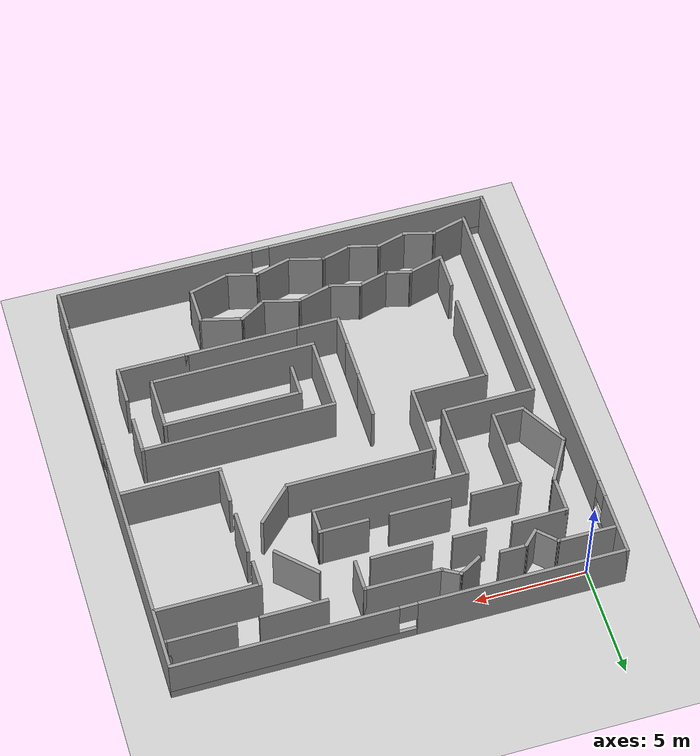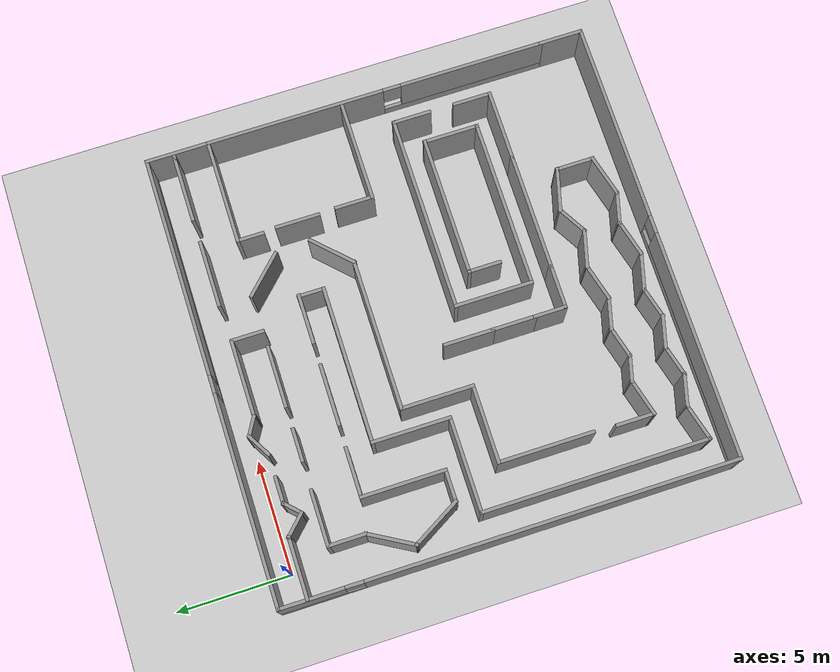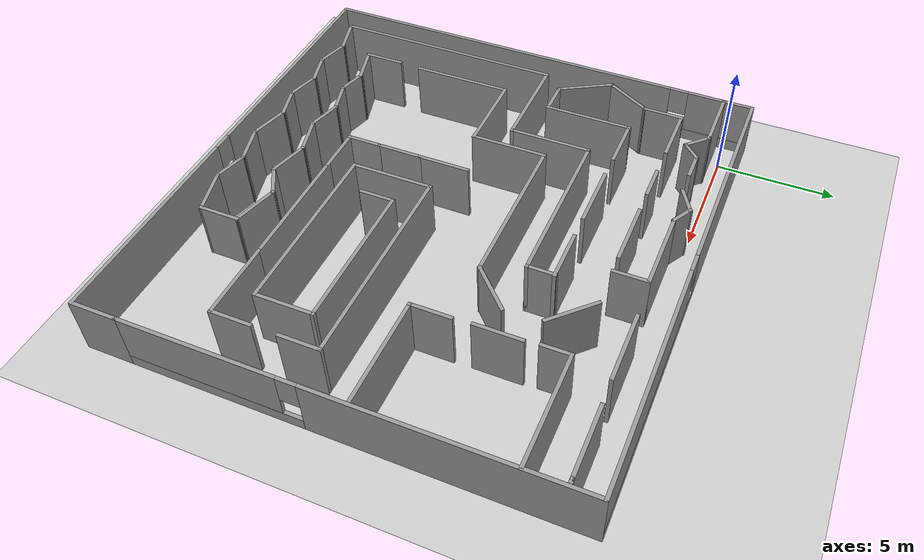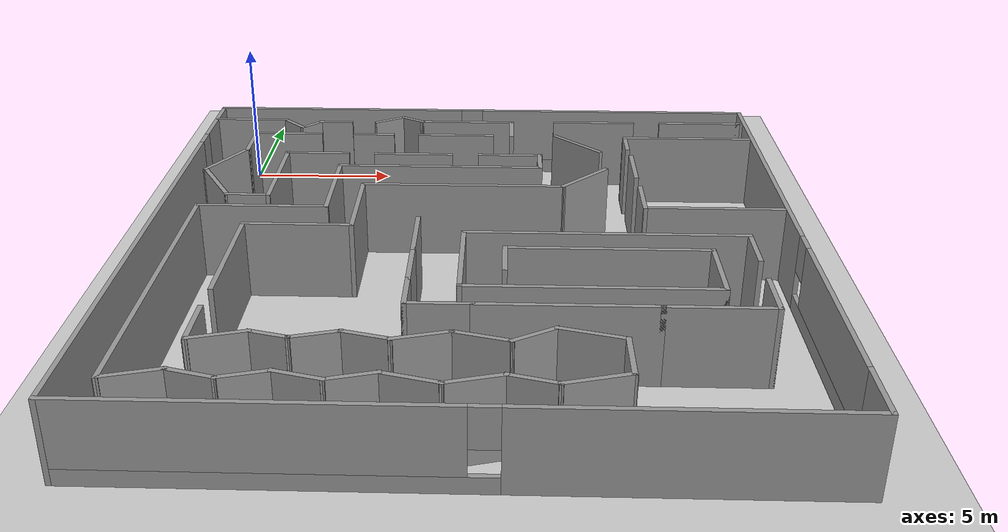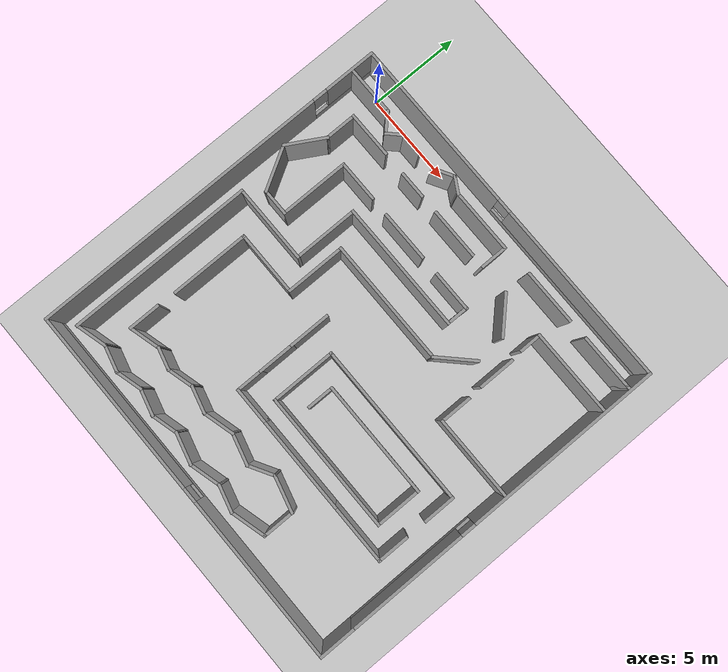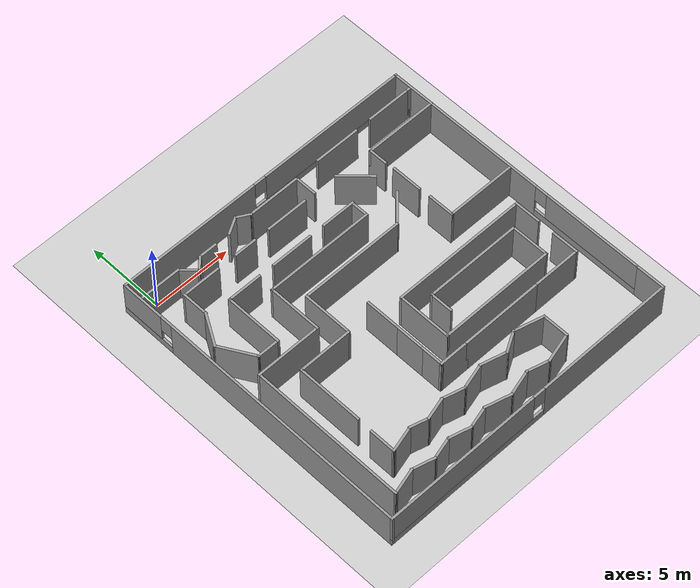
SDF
<sdf version="1.6">
 <world name="default">
  <light name="sun" type="directional">
   <pose>0 0 10 0 -0 0</pose>
   <diffuse>0.8 0.8 0.8 1</diffuse>
   <specular>0.1 0.1 0.1 1</specular>
   <attenuation>
    <range>1000</range>
    <constant>0.9</constant>
    <linear>0.01</linear>
    <quadratic>0.001</quadratic>
   </attenuation>
   <direction>-0.5 0.5 -1</direction>
  </light>
  <model name="ground_plane">
   <static>1</static>
   <link name="link">
    <collision name="collision">
     <geometry><plane><normal>0 0 1</normal><size>100 100</size></plane></geometry>
     <surface><friction><ode><mu>100</mu><mu2>50</mu2></ode></friction></surface>
    </collision>
    <visual name="visual">
     <cast_shadows>0</cast_shadows>
     <geometry><plane><normal>0 0 1</normal><size>100 100</size></plane></geometry>
     <material>
      <script><uri>file://media/materials/scripts/gazebo.material</uri><name>Gazebo/Grey</name></script>
     </material>
    </visual>
   </link>
  </model>
  <gravity>0 0 -9.8</gravity>
  <magnetic_field>6e-06 2.3e-05 -4.2e-05</magnetic_field>
  <atmosphere type="adiabatic"/>
  <physics name="default_physics" default="0" type="ode">
   <max_step_size>0.001</max_step_size>
   <real_time_factor>1</real_time_factor>
   <real_time_update_rate>1000</real_time_update_rate>
  </physics>
  <scene><ambient>0.4 0.4 0.4 1</ambient><background>0.7 0.7 0.7 1</background><shadows>1</shadows></scene>
  <spherical_coordinates>
   <surface_model>EARTH_WGS84</surface_model>
   <latitude_deg>0</latitude_deg>
   <longitude_deg>0</longitude_deg>
   <elevation>0</elevation>
   <heading_deg>0</heading_deg>
  </spherical_coordinates>
  <model name="Hard">
   <pose>8.56089 -9.07825 0 0 -0 0</pose>
   <link name="Wall_1">
    <pose>0 9.85 0 0 -0 0</pose>
    <visual name="Wall_1_Visual_0">
     <pose>-5.35205 0 1.25 0 -0 0</pose>
     <geometry><box><size>9.29589 0.15 2.5</size></box></geometry>
     <material>
      <script><uri>file://media/materials/scripts/gazebo.material</uri><name>Gazebo/Grey</name></script>
      <ambient>1 1 1 1</ambient>
     </material>
    </visual>
    <collision name="Wall_1_Collision_0">
     <geometry><box><size>9.29589 0.15 2.5</size></box></geometry>
     <pose>-5.35205 0 1.25 0 -0 0</pose>
    </collision>
    <visual name="Wall_1_Visual_1">
     <pose>4.64795 0 0.25 0 -0 0</pose>
     <geometry><box><size>10.7041 0.15 0.5</size></box></geometry>
     <material>
      <script><uri>file://media/materials/scripts/gazebo.material</uri><name>Gazebo/Grey</name></script>
      <ambient>1 1 1 1</ambient>
     </material>
    </visual>
    <collision name="Wall_1_Collision_1">
     <geometry><box><size>10.7041 0.15 0.5</size></box></geometry>
     <pose>4.64795 0 0.25 0 -0 0</pose>
    </collision>
    <visual name="Wall_1_Visual_2">
     <pose>5.04795 0 1.5 0 -0 0</pose>
     <geometry><box><size>9.90411 0.15 2</size></box></geometry>
     <material>
      <script><uri>file://media/materials/scripts/gazebo.material</uri><name>Gazebo/Grey</name></script>
      <ambient>1 1 1 1</ambient>
     </material>
    </visual>
    <collision name="Wall_1_Collision_2">
     <geometry><box><size>9.90411 0.15 2</size></box></geometry>
     <pose>5.04795 0 1.5 0 -0 0</pose>
    </collision>
    <visual name="Wall_1_Visual_3">
     <pose>-0.304106 0 1.9 0 -0 0</pose>
     <geometry><box><size>0.8 0.15 1.2</size></box></geometry>
     <material>
      <script><uri>file://media/materials/scripts/gazebo.material</uri><name>Gazebo/Grey</name></script>
      <ambient>1 1 1 1</ambient>
     </material>
    </visual>
    <collision name="Wall_1_Collision_3">
     <geometry><box><size>0.8 0.15 1.2</size></box></geometry>
     <pose>-0.304106 0 1.9 0 -0 0</pose>
    </collision>
   </link>
   <link name="Wall_100">
    <collision name="Wall_100_Collision">
     <geometry><box><size>1.75 0.15 2.5</size></box></geometry>
     <pose>0 0 1.25 0 -0 0</pose>
    </collision>
    <visual name="Wall_100_Visual">
     <pose>0 0 1.25 0 -0 0</pose>
     <geometry><box><size>1.75 0.15 2.5</size></box></geometry>
     <material>
      <script><uri>file://media/materials/scripts/gazebo.material</uri><name>Gazebo/Grey</name></script>
      <ambient>1 1 1 1</ambient>
     </material>
    </visual>
    <pose>8.36882 -1.57774 0 0 0 -1.5708</pose>
   </link>
   <link name="Wall_102">
    <collision name="Wall_102_Collision">
     <geometry><box><size>1.75 0.15 2.5</size></box></geometry>
     <pose>0 0 1.25 0 -0 0</pose>
    </collision>
    <visual name="Wall_102_Visual">
     <pose>0 0 1.25 0 -0 0</pose>
     <geometry><box><size>1.75 0.15 2.5</size></box></geometry>
     <material>
      <script><uri>file://media/materials/scripts/gazebo.material</uri><name>Gazebo/Grey</name></script>
      <ambient>1 1 1 1</ambient>
     </material>
    </visual>
    <pose>8.36882 -4.32774 0 0 -0 1.5708</pose>
   </link>
   <link name="Wall_11">
    <collision name="Wall_11_Collision">
     <geometry><box><size>1.25 0.15 2.5</size></box></geometry>
     <pose>0 0 1.25 0 -0 0</pose>
    </collision>
    <visual name="Wall_11_Visual">
     <pose>0 0 1.25 0 -0 0</pose>
     <geometry><box><size>1.25 0.15 2.5</size></box></geometry>
     <material>
      <script><uri>file://media/materials/scripts/gazebo.material</uri><name>Gazebo/Grey</name></script>
      <ambient>1 1 1 1</ambient>
     </material>
    </visual>
    <pose>-3.34814 8.72224 0 0 -0 0.523599</pose>
   </link>
   <link name="Wall_12">
    <collision name="Wall_12_Collision">
     <geometry><box><size>1 0.15 2.5</size></box></geometry>
     <pose>0 0 1.25 0 -0 0</pose>
    </collision>
    <visual name="Wall_12_Visual">
     <pose>0 0 1.25 0 -0 0</pose>
     <geometry><box><size>1 0.15 2.5</size></box></geometry>
     <material>
      <script><uri>file://media/materials/scripts/gazebo.material</uri><name>Gazebo/Grey</name></script>
      <ambient>1 1 1 1</ambient>
     </material>
    </visual>
    <pose>-2.50376 8.78474 0 0 0 -0.523599</pose>
   </link>
   <link name="Wall_13">
    <collision name="Wall_13_Collision">
     <geometry><box><size>3.5 0.15 2.5</size></box></geometry>
     <pose>0 0 1.25 0 -0 0</pose>
    </collision>
    <visual name="Wall_13_Visual">
     <pose>0 0 1.25 0 -0 0</pose>
     <geometry><box><size>3.5 0.15 2.5</size></box></geometry>
     <material>
      <script><uri>file://media/materials/scripts/gazebo.material</uri><name>Gazebo/Grey</name></script>
      <ambient>1 1 1 1</ambient>
     </material>
    </visual>
    <pose>-0.460701 8.57224 0 0 -0 0</pose>
   </link>
   <link name="Wall_14">
    <collision name="Wall_14_Collision">
     <geometry><box><size>1.5 0.15 2.5</size></box></geometry>
     <pose>0 0 1.25 0 -0 0</pose>
    </collision>
    <visual name="Wall_14_Visual">
     <pose>0 0 1.25 0 -0 0</pose>
     <geometry><box><size>1.5 0.15 2.5</size></box></geometry>
     <material>
      <script><uri>file://media/materials/scripts/gazebo.material</uri><name>Gazebo/Grey</name></script>
      <ambient>1 1 1 1</ambient>
     </material>
    </visual>
    <pose>1.2143 7.89724 0 0 0 -1.5708</pose>
   </link>
   <link name="Wall_16">
    <collision name="Wall_16_Collision">
     <geometry><box><size>1.75 0.15 2.5</size></box></geometry>
     <pose>0 0 1.25 0 -0 0</pose>
    </collision>
    <visual name="Wall_16_Visual">
     <pose>0 0 1.25 0 -0 0</pose>
     <geometry><box><size>1.75 0.15 2.5</size></box></geometry>
     <material>
      <script><uri>file://media/materials/scripts/gazebo.material</uri><name>Gazebo/Grey</name></script>
      <ambient>1 1 1 1</ambient>
     </material>
    </visual>
    <pose>-8.1357 6.42224 0 0 0 -1.5708</pose>
   </link>
   <link name="Wall_17">
    <collision name="Wall_17_Collision">
     <geometry><box><size>2.25 0.15 2.5</size></box></geometry>
     <pose>0 0 1.25 0 -0 0</pose>
    </collision>
    <visual name="Wall_17_Visual">
     <pose>0 0 1.25 0 -0 0</pose>
     <geometry><box><size>2.25 0.15 2.5</size></box></geometry>
     <material>
      <script><uri>file://media/materials/scripts/gazebo.material</uri><name>Gazebo/Grey</name></script>
      <ambient>1 1 1 1</ambient>
     </material>
    </visual>
    <pose>-8.6607 4.71291 0 0 0 -2.0944</pose>
   </link>
   <link name="Wall_18">
    <collision name="Wall_18_Collision">
     <geometry><box><size>2.5 0.15 2.5</size></box></geometry>
     <pose>0 0 1.25 0 -0 0</pose>
    </collision>
    <visual name="Wall_18_Visual">
     <pose>0 0 1.25 0 -0 0</pose>
     <geometry><box><size>2.5 0.15 2.5</size></box></geometry>
     <material>
      <script><uri>file://media/materials/scripts/gazebo.material</uri><name>Gazebo/Grey</name></script>
      <ambient>1 1 1 1</ambient>
     </material>
    </visual>
    <pose>-8.5982 2.78601 0 0 0 -1.0472</pose>
   </link>
   <link name="Wall_19">
    <collision name="Wall_19_Collision">
     <geometry><box><size>1.5 0.15 2.5</size></box></geometry>
     <pose>0 0 1.25 0 -0 0</pose>
    </collision>
    <visual name="Wall_19_Visual">
     <pose>0 0 1.25 0 -0 0</pose>
     <geometry><box><size>1.5 0.15 2.5</size></box></geometry>
     <material>
      <script><uri>file://media/materials/scripts/gazebo.material</uri><name>Gazebo/Grey</name></script>
      <ambient>1 1 1 1</ambient>
     </material>
    </visual>
    <pose>-7.3357 1.76843 0 0 -0 0</pose>
   </link>
   <link name="Wall_2">
    <pose>9.925 0.925 0 0 0 -1.5708</pose>
    <visual name="Wall_2_Visual_0">
     <pose>-3.65739 0 1.25 0 -0 0</pose>
     <geometry><box><size>10.6852 0.15 2.5</size></box></geometry>
     <material>
      <script><uri>file://media/materials/scripts/gazebo.material</uri><name>Gazebo/Grey</name></script>
      <ambient>1 1 1 1</ambient>
     </material>
    </visual>
    <collision name="Wall_2_Collision_0">
     <geometry><box><size>10.6852 0.15 2.5</size></box></geometry>
     <pose>-3.65739 0 1.25 0 -0 0</pose>
    </collision>
    <visual name="Wall_2_Visual_1">
     <pose>5.34262 0 0.25 0 -0 0</pose>
     <geometry><box><size>7.31477 0.15 0.5</size></box></geometry>
     <material>
      <script><uri>file://media/materials/scripts/gazebo.material</uri><name>Gazebo/Grey</name></script>
      <ambient>1 1 1 1</ambient>
     </material>
    </visual>
    <collision name="Wall_2_Collision_1">
     <geometry><box><size>7.31477 0.15 0.5</size></box></geometry>
     <pose>5.34262 0 0.25 0 -0 0</pose>
    </collision>
    <visual name="Wall_2_Visual_2">
     <pose>5.74261 0 1.5 0 -0 0</pose>
     <geometry><box><size>6.51477 0.15 2</size></box></geometry>
     <material>
      <script><uri>file://media/materials/scripts/gazebo.material</uri><name>Gazebo/Grey</name></script>
      <ambient>1 1 1 1</ambient>
     </material>
    </visual>
    <collision name="Wall_2_Collision_2">
     <geometry><box><size>6.51477 0.15 2</size></box></geometry>
     <pose>5.74261 0 1.5 0 -0 0</pose>
    </collision>
    <visual name="Wall_2_Visual_3">
     <pose>2.08523 0 1.9 0 -0 0</pose>
     <geometry><box><size>0.8 0.15 1.2</size></box></geometry>
     <material>
      <script><uri>file://media/materials/scripts/gazebo.material</uri><name>Gazebo/Grey</name></script>
      <ambient>1 1 1 1</ambient>
     </material>
    </visual>
    <collision name="Wall_2_Collision_3">
     <geometry><box><size>0.8 0.15 1.2</size></box></geometry>
     <pose>2.08523 0 1.9 0 -0 0</pose>
    </collision>
   </link>
   <link name="Wall_20">
    <collision name="Wall_20_Collision">
     <geometry><box><size>3.75 0.15 2.5</size></box></geometry>
     <pose>0 0 1.25 0 -0 0</pose>
    </collision>
    <visual name="Wall_20_Visual">
     <pose>0 0 1.25 0 -0 0</pose>
     <geometry><box><size>3.75 0.15 2.5</size></box></geometry>
     <material>
      <script><uri>file://media/materials/scripts/gazebo.material</uri><name>Gazebo/Grey</name></script>
      <ambient>1 1 1 1</ambient>
     </material>
    </visual>
    <pose>-6.6607 3.56843 0 0 -0 1.5708</pose>
   </link>
   <link name="Wall_22">
    <collision name="Wall_22_Collision">
     <geometry><box><size>1.25 0.15 2.5</size></box></geometry>
     <pose>0 0 1.25 0 -0 0</pose>
    </collision>
    <visual name="Wall_22_Visual">
     <pose>0 0 1.25 0 -0 0</pose>
     <geometry><box><size>1.25 0.15 2.5</size></box></geometry>
     <material>
      <script><uri>file://media/materials/scripts/gazebo.material</uri><name>Gazebo/Grey</name></script>
      <ambient>1 1 1 1</ambient>
     </material>
    </visual>
    <pose>2.1893 4.81843 0 0 0 -1.5708</pose>
   </link>
   <link name="Wall_23">
    <collision name="Wall_23_Collision">
     <geometry><box><size>7 0.15 2.5</size></box></geometry>
     <pose>0 0 1.25 0 -0 0</pose>
    </collision>
    <visual name="Wall_23_Visual">
     <pose>0 0 1.25 0 -0 0</pose>
     <geometry><box><size>7 0.15 2.5</size></box></geometry>
     <material>
      <script><uri>file://media/materials/scripts/gazebo.material</uri><name>Gazebo/Grey</name></script>
      <ambient>1 1 1 1</ambient>
     </material>
    </visual>
    <pose>-1.2357 4.26843 0 0 -0 3.14159</pose>
   </link>
   <link name="Wall_24">
    <collision name="Wall_24_Collision">
     <geometry><box><size>3.5 0.15 2.5</size></box></geometry>
     <pose>0 0 1.25 0 -0 0</pose>
    </collision>
    <visual name="Wall_24_Visual">
     <pose>0 0 1.25 0 -0 0</pose>
     <geometry><box><size>3.5 0.15 2.5</size></box></geometry>
     <material>
      <script><uri>file://media/materials/scripts/gazebo.material</uri><name>Gazebo/Grey</name></script>
      <ambient>1 1 1 1</ambient>
     </material>
    </visual>
    <pose>-4.6607 2.59343 0 0 0 -1.5708</pose>
   </link>
   <link name="Wall_25">
    <collision name="Wall_25_Collision">
     <geometry><box><size>4.25 0.15 2.5</size></box></geometry>
     <pose>0 0 1.25 0 -0 0</pose>
    </collision>
    <visual name="Wall_25_Visual">
     <pose>0 0 1.25 0 -0 0</pose>
     <geometry><box><size>4.25 0.15 2.5</size></box></geometry>
     <material>
      <script><uri>file://media/materials/scripts/gazebo.material</uri><name>Gazebo/Grey</name></script>
      <ambient>1 1 1 1</ambient>
     </material>
    </visual>
    <pose>-6.7107 0.918428 0 0 -0 3.14159</pose>
   </link>
   <link name="Wall_26">
    <collision name="Wall_26_Collision">
     <geometry><box><size>10 0.15 2.5</size></box></geometry>
     <pose>0 0 1.25 0 -0 0</pose>
    </collision>
    <visual name="Wall_26_Visual">
     <pose>0 0 1.25 0 -0 0</pose>
     <geometry><box><size>10 0.15 2.5</size></box></geometry>
     <material>
      <script><uri>file://media/materials/scripts/gazebo.material</uri><name>Gazebo/Grey</name></script>
      <ambient>1 1 1 1</ambient>
     </material>
    </visual>
    <pose>-8.7607 -4.00657 0 0 0 -1.5708</pose>
   </link>
   <link name="Wall_27">
    <collision name="Wall_27_Collision">
     <geometry><box><size>1.75 0.15 2.5</size></box></geometry>
     <pose>0 0 1.25 0 -0 0</pose>
    </collision>
    <visual name="Wall_27_Visual">
     <pose>0 0 1.25 0 -0 0</pose>
     <geometry><box><size>1.75 0.15 2.5</size></box></geometry>
     <material>
      <script><uri>file://media/materials/scripts/gazebo.material</uri><name>Gazebo/Grey</name></script>
      <ambient>1 1 1 1</ambient>
     </material>
    </visual>
    <pose>-7.98796 -8.72452 0 0 -0 0.261799</pose>
   </link>
   <link name="Wall_28">
    <collision name="Wall_28_Collision">
     <geometry><box><size>1.5 0.15 2.5</size></box></geometry>
     <pose>0 0 1.25 0 -0 0</pose>
    </collision>
    <visual name="Wall_28_Visual">
     <pose>0 0 1.25 0 -0 0</pose>
     <geometry><box><size>1.5 0.15 2.5</size></box></geometry>
     <material>
      <script><uri>file://media/materials/scripts/gazebo.material</uri><name>Gazebo/Grey</name></script>
      <ambient>1 1 1 1</ambient>
     </material>
    </visual>
    <pose>-6.56322 -8.69216 0 0 0 -0.261799</pose>
   </link>
   <link name="Wall_29">
    <collision name="Wall_29_Collision">
     <geometry><box><size>1.5 0.15 2.5</size></box></geometry>
     <pose>0 0 1.25 0 -0 0</pose>
    </collision>
    <visual name="Wall_29_Visual">
     <pose>0 0 1.25 0 -0 0</pose>
     <geometry><box><size>1.5 0.15 2.5</size></box></geometry>
     <material>
      <script><uri>file://media/materials/scripts/gazebo.material</uri><name>Gazebo/Grey</name></script>
      <ambient>1 1 1 1</ambient>
     </material>
    </visual>
    <pose>-5.25922 -8.69216 0 0 -0 0.261799</pose>
   </link>
   <link name="Wall_3">
    <collision name="Wall_3_Collision">
     <geometry><box><size>2 0.15 2.5</size></box></geometry>
     <pose>0 0 1.25 0 -0 0</pose>
    </collision>
    <visual name="Wall_3_Visual">
     <pose>0 0 1.25 0 -0 0</pose>
     <geometry><box><size>2 0.15 2.5</size></box></geometry>
     <material>
      <script><uri>file://media/materials/scripts/gazebo.material</uri><name>Gazebo/Grey</name></script>
      <ambient>1 1 1 1</ambient>
     </material>
    </visual>
    <pose>9.925 -8.925 0 0 0 -1.5708</pose>
   </link>
   <link name="Wall_30">
    <collision name="Wall_30_Collision">
     <geometry><box><size>1.5 0.15 2.5</size></box></geometry>
     <pose>0 0 1.25 0 -0 0</pose>
    </collision>
    <visual name="Wall_30_Visual">
     <pose>0 0 1.25 0 -0 0</pose>
     <geometry><box><size>1.5 0.15 2.5</size></box></geometry>
     <material>
      <script><uri>file://media/materials/scripts/gazebo.material</uri><name>Gazebo/Grey</name></script>
      <ambient>1 1 1 1</ambient>
     </material>
    </visual>
    <pose>-3.95522 -8.69216 0 0 0 -0.261799</pose>
   </link>
   <link name="Wall_31">
    <collision name="Wall_31_Collision">
     <geometry><box><size>1.5 0.15 2.5</size></box></geometry>
     <pose>0 0 1.25 0 -0 0</pose>
    </collision>
    <visual name="Wall_31_Visual">
     <pose>0 0 1.25 0 -0 0</pose>
     <geometry><box><size>1.5 0.15 2.5</size></box></geometry>
     <material>
      <script><uri>file://media/materials/scripts/gazebo.material</uri><name>Gazebo/Grey</name></script>
      <ambient>1 1 1 1</ambient>
     </material>
    </visual>
    <pose>-2.65122 -8.69216 0 0 -0 0.261799</pose>
   </link>
   <link name="Wall_32">
    <collision name="Wall_32_Collision">
     <geometry><box><size>1.75 0.15 2.5</size></box></geometry>
     <pose>0 0 1.25 0 -0 0</pose>
    </collision>
    <visual name="Wall_32_Visual">
     <pose>0 0 1.25 0 -0 0</pose>
     <geometry><box><size>1.75 0.15 2.5</size></box></geometry>
     <material>
      <script><uri>file://media/materials/scripts/gazebo.material</uri><name>Gazebo/Grey</name></script>
      <ambient>1 1 1 1</ambient>
     </material>
    </visual>
    <pose>-1.22648 -8.72452 0 0 0 -0.261799</pose>
   </link>
   <link name="Wall_33">
    <collision name="Wall_33_Collision">
     <geometry><box><size>1.75 0.15 2.5</size></box></geometry>
     <pose>0 0 1.25 0 -0 0</pose>
    </collision>
    <visual name="Wall_33_Visual">
     <pose>0 0 1.25 0 -0 0</pose>
     <geometry><box><size>1.75 0.15 2.5</size></box></geometry>
     <material>
      <script><uri>file://media/materials/scripts/gazebo.material</uri><name>Gazebo/Grey</name></script>
      <ambient>1 1 1 1</ambient>
     </material>
    </visual>
    <pose>0.319002 -8.72452 0 0 -0 0.261799</pose>
   </link>
   <link name="Wall_34">
    <collision name="Wall_34_Collision">
     <geometry><box><size>1.5 0.15 2.5</size></box></geometry>
     <pose>0 0 1.25 0 -0 0</pose>
    </collision>
    <visual name="Wall_34_Visual">
     <pose>0 0 1.25 0 -0 0</pose>
     <geometry><box><size>1.5 0.15 2.5</size></box></geometry>
     <material>
      <script><uri>file://media/materials/scripts/gazebo.material</uri><name>Gazebo/Grey</name></script>
      <ambient>1 1 1 1</ambient>
     </material>
    </visual>
    <pose>1.74374 -8.69216 0 0 0 -0.261799</pose>
   </link>
   <link name="Wall_35">
    <collision name="Wall_35_Collision">
     <geometry><box><size>2 0.15 2.5</size></box></geometry>
     <pose>0 0 1.25 0 -0 0</pose>
    </collision>
    <visual name="Wall_35_Visual">
     <pose>0 0 1.25 0 -0 0</pose>
     <geometry><box><size>2 0.15 2.5</size></box></geometry>
     <material>
      <script><uri>file://media/materials/scripts/gazebo.material</uri><name>Gazebo/Grey</name></script>
      <ambient>1 1 1 1</ambient>
     </material>
    </visual>
    <pose>3.28922 -8.62746 0 0 -0 0.261799</pose>
   </link>
   <link name="Wall_36">
    <collision name="Wall_36_Collision">
     <geometry><box><size>1.75 0.15 2.5</size></box></geometry>
     <pose>0 0 1.25 0 -0 0</pose>
    </collision>
    <visual name="Wall_36_Visual">
     <pose>0 0 1.25 0 -0 0</pose>
     <geometry><box><size>1.75 0.15 2.5</size></box></geometry>
     <material>
      <script><uri>file://media/materials/scripts/gazebo.material</uri><name>Gazebo/Grey</name></script>
      <ambient>1 1 1 1</ambient>
     </material>
    </visual>
    <pose>4.18271 -7.58805 0 0 -0 1.5708</pose>
   </link>
   <link name="Wall_37">
    <collision name="Wall_37_Collision">
     <geometry><box><size>2 0.15 2.5</size></box></geometry>
     <pose>0 0 1.25 0 -0 0</pose>
    </collision>
    <visual name="Wall_37_Visual">
     <pose>0 0 1.25 0 -0 0</pose>
     <geometry><box><size>2 0.15 2.5</size></box></geometry>
     <material>
      <script><uri>file://media/materials/scripts/gazebo.material</uri><name>Gazebo/Grey</name></script>
      <ambient>1 1 1 1</ambient>
     </material>
    </visual>
    <pose>3.28922 -6.54864 0 0 -0 2.87979</pose>
   </link>
   <link name="Wall_38">
    <collision name="Wall_38_Collision">
     <geometry><box><size>1.5 0.15 2.5</size></box></geometry>
     <pose>0 0 1.25 0 -0 0</pose>
    </collision>
    <visual name="Wall_38_Visual">
     <pose>0 0 1.25 0 -0 0</pose>
     <geometry><box><size>1.5 0.15 2.5</size></box></geometry>
     <material>
      <script><uri>file://media/materials/scripts/gazebo.material</uri><name>Gazebo/Grey</name></script>
      <ambient>1 1 1 1</ambient>
     </material>
    </visual>
    <pose>1.81117 -6.64674 0 0 0 -2.61799</pose>
   </link>
   <link name="Wall_39">
    <collision name="Wall_39_Collision">
     <geometry><box><size>1.75 0.15 2.5</size></box></geometry>
     <pose>0 0 1.25 0 -0 0</pose>
    </collision>
    <visual name="Wall_39_Visual">
     <pose>0 0 1.25 0 -0 0</pose>
     <geometry><box><size>1.75 0.15 2.5</size></box></geometry>
     <material>
      <script><uri>file://media/materials/scripts/gazebo.material</uri><name>Gazebo/Grey</name></script>
      <ambient>1 1 1 1</ambient>
     </material>
    </visual>
    <pose>0.453867 -6.77718 0 0 -0 2.87979</pose>
   </link>
   <link name="Wall_4">
    <pose>0 -9.85 0 0 -0 3.14159</pose>
    <visual name="Wall_4_Visual_0">
     <pose>-5.49568 0 1.25 0 -0 0</pose>
     <geometry><box><size>9.00863 0.15 2.5</size></box></geometry>
     <material>
      <script><uri>file://media/materials/scripts/gazebo.material</uri><name>Gazebo/Grey</name></script>
      <ambient>1 1 1 1</ambient>
     </material>
    </visual>
    <collision name="Wall_4_Collision_0">
     <geometry><box><size>9.00863 0.15 2.5</size></box></geometry>
     <pose>-5.49568 0 1.25 0 -0 0</pose>
    </collision>
    <visual name="Wall_4_Visual_1">
     <pose>4.50432 0 0.25 0 -0 0</pose>
     <geometry><box><size>10.9914 0.15 0.5</size></box></geometry>
     <material>
      <script><uri>file://media/materials/scripts/gazebo.material</uri><name>Gazebo/Grey</name></script>
      <ambient>1 1 1 1</ambient>
     </material>
    </visual>
    <collision name="Wall_4_Collision_1">
     <geometry><box><size>10.9914 0.15 0.5</size></box></geometry>
     <pose>4.50432 0 0.25 0 -0 0</pose>
    </collision>
    <visual name="Wall_4_Visual_2">
     <pose>4.90432 0 1.5 0 -0 0</pose>
     <geometry><box><size>10.1914 0.15 2</size></box></geometry>
     <material>
      <script><uri>file://media/materials/scripts/gazebo.material</uri><name>Gazebo/Grey</name></script>
      <ambient>1 1 1 1</ambient>
     </material>
    </visual>
    <collision name="Wall_4_Collision_2">
     <geometry><box><size>10.1914 0.15 2</size></box></geometry>
     <pose>4.90432 0 1.5 0 -0 0</pose>
    </collision>
    <visual name="Wall_4_Visual_3">
     <pose>-0.591365 0 1.9 0 -0 0</pose>
     <geometry><box><size>0.8 0.15 1.2</size></box></geometry>
     <material>
      <script><uri>file://media/materials/scripts/gazebo.material</uri><name>Gazebo/Grey</name></script>
      <ambient>1 1 1 1</ambient>
     </material>
    </visual>
    <collision name="Wall_4_Collision_3">
     <geometry><box><size>0.8 0.15 1.2</size></box></geometry>
     <pose>-0.591365 0 1.9 0 -0 0</pose>
    </collision>
   </link>
   <link name="Wall_40">
    <collision name="Wall_40_Collision">
     <geometry><box><size>1.75 0.15 2.5</size></box></geometry>
     <pose>0 0 1.25 0 -0 0</pose>
    </collision>
    <visual name="Wall_40_Visual">
     <pose>0 0 1.25 0 -0 0</pose>
     <geometry><box><size>1.75 0.15 2.5</size></box></geometry>
     <material>
      <script><uri>file://media/materials/scripts/gazebo.material</uri><name>Gazebo/Grey</name></script>
      <ambient>1 1 1 1</ambient>
     </material>
    </visual>
    <pose>-1.09161 -6.77718 0 0 0 -2.87979</pose>
   </link>
   <link name="Wall_41">
    <collision name="Wall_41_Collision">
     <geometry><box><size>1.5 0.15 2.5</size></box></geometry>
     <pose>0 0 1.25 0 -0 0</pose>
    </collision>
    <visual name="Wall_41_Visual">
     <pose>0 0 1.25 0 -0 0</pose>
     <geometry><box><size>1.5 0.15 2.5</size></box></geometry>
     <material>
      <script><uri>file://media/materials/scripts/gazebo.material</uri><name>Gazebo/Grey</name></script>
      <ambient>1 1 1 1</ambient>
     </material>
    </visual>
    <pose>-2.51635 -6.80953 0 0 -0 2.87979</pose>
   </link>
   <link name="Wall_42">
    <collision name="Wall_42_Collision">
     <geometry><box><size>1.5 0.15 2.5</size></box></geometry>
     <pose>0 0 1.25 0 -0 0</pose>
    </collision>
    <visual name="Wall_42_Visual">
     <pose>0 0 1.25 0 -0 0</pose>
     <geometry><box><size>1.5 0.15 2.5</size></box></geometry>
     <material>
      <script><uri>file://media/materials/scripts/gazebo.material</uri><name>Gazebo/Grey</name></script>
      <ambient>1 1 1 1</ambient>
     </material>
    </visual>
    <pose>-3.82035 -6.80953 0 0 0 -2.87979</pose>
   </link>
   <link name="Wall_43">
    <collision name="Wall_43_Collision">
     <geometry><box><size>1.25 0.15 2.5</size></box></geometry>
     <pose>0 0 1.25 0 -0 0</pose>
    </collision>
    <visual name="Wall_43_Visual">
     <pose>0 0 1.25 0 -0 0</pose>
     <geometry><box><size>1.25 0.15 2.5</size></box></geometry>
     <material>
      <script><uri>file://media/materials/scripts/gazebo.material</uri><name>Gazebo/Grey</name></script>
      <ambient>1 1 1 1</ambient>
     </material>
    </visual>
    <pose>-5.00361 -6.84189 0 0 -0 2.87979</pose>
   </link>
   <link name="Wall_44">
    <collision name="Wall_44_Collision">
     <geometry><box><size>1.75 0.15 2.5</size></box></geometry>
     <pose>0 0 1.25 0 -0 0</pose>
    </collision>
    <visual name="Wall_44_Visual">
     <pose>0 0 1.25 0 -0 0</pose>
     <geometry><box><size>1.75 0.15 2.5</size></box></geometry>
     <material>
      <script><uri>file://media/materials/scripts/gazebo.material</uri><name>Gazebo/Grey</name></script>
      <ambient>1 1 1 1</ambient>
     </material>
    </visual>
    <pose>-6.30761 -6.90659 0 0 0 -2.87979</pose>
   </link>
   <link name="Wall_45">
    <collision name="Wall_45_Collision">
     <geometry><box><size>1.75 0.15 2.5</size></box></geometry>
     <pose>0 0 1.25 0 -0 0</pose>
    </collision>
    <visual name="Wall_45_Visual">
     <pose>0 0 1.25 0 -0 0</pose>
     <geometry><box><size>1.75 0.15 2.5</size></box></geometry>
     <material>
      <script><uri>file://media/materials/scripts/gazebo.material</uri><name>Gazebo/Grey</name></script>
      <ambient>1 1 1 1</ambient>
     </material>
    </visual>
    <pose>-7.08035 -6.31365 0 0 -0 1.5708</pose>
   </link>
   <link name="Wall_47">
    <collision name="Wall_47_Collision">
     <geometry><box><size>4.25 0.15 2.5</size></box></geometry>
     <pose>0 0 1.25 0 -0 0</pose>
    </collision>
    <visual name="Wall_47_Visual">
     <pose>0 0 1.25 0 -0 0</pose>
     <geometry><box><size>4.25 0.15 2.5</size></box></geometry>
     <material>
      <script><uri>file://media/materials/scripts/gazebo.material</uri><name>Gazebo/Grey</name></script>
      <ambient>1 1 1 1</ambient>
     </material>
    </visual>
    <pose>-7.03511 -2.44104 0 0 -0 1.5708</pose>
   </link>
   <link name="Wall_48">
    <collision name="Wall_48_Collision">
     <geometry><box><size>3.5 0.15 2.5</size></box></geometry>
     <pose>0 0 1.25 0 -0 0</pose>
    </collision>
    <visual name="Wall_48_Visual">
     <pose>0 0 1.25 0 -0 0</pose>
     <geometry><box><size>3.5 0.15 2.5</size></box></geometry>
     <material>
      <script><uri>file://media/materials/scripts/gazebo.material</uri><name>Gazebo/Grey</name></script>
      <ambient>1 1 1 1</ambient>
     </material>
    </visual>
    <pose>-5.36011 -0.391037 0 0 -0 0</pose>
   </link>
   <link name="Wall_49">
    <collision name="Wall_49_Collision">
     <geometry><box><size>3.25 0.15 2.5</size></box></geometry>
     <pose>0 0 1.25 0 -0 0</pose>
    </collision>
    <visual name="Wall_49_Visual">
     <pose>0 0 1.25 0 -0 0</pose>
     <geometry><box><size>3.25 0.15 2.5</size></box></geometry>
     <material>
      <script><uri>file://media/materials/scripts/gazebo.material</uri><name>Gazebo/Grey</name></script>
      <ambient>1 1 1 1</ambient>
     </material>
    </visual>
    <pose>-3.68511 1.15896 0 0 -0 1.5708</pose>
   </link>
   <link name="Wall_5">
    <pose>-9.925 0 0 0 -0 1.5708</pose>
    <visual name="Wall_5_Visual_0">
     <pose>-1.83354 0 1.25 0 -0 0</pose>
     <geometry><box><size>16.1829 0.15 2.5</size></box></geometry>
     <material>
      <script><uri>file://media/materials/scripts/gazebo.material</uri><name>Gazebo/Grey</name></script>
      <ambient>1 1 1 1</ambient>
     </material>
    </visual>
    <collision name="Wall_5_Collision_0">
     <geometry><box><size>16.1829 0.15 2.5</size></box></geometry>
     <pose>-1.83354 0 1.25 0 -0 0</pose>
    </collision>
    <visual name="Wall_5_Visual_1">
     <pose>8.09146 0 0.25 0 -0 0</pose>
     <geometry><box><size>3.66708 0.15 0.5</size></box></geometry>
     <material>
      <script><uri>file://media/materials/scripts/gazebo.material</uri><name>Gazebo/Grey</name></script>
      <ambient>1 1 1 1</ambient>
     </material>
    </visual>
    <collision name="Wall_5_Collision_1">
     <geometry><box><size>3.66708 0.15 0.5</size></box></geometry>
     <pose>8.09146 0 0.25 0 -0 0</pose>
    </collision>
    <visual name="Wall_5_Visual_2">
     <pose>8.49146 0 1.5 0 -0 0</pose>
     <geometry><box><size>2.86708 0.15 2</size></box></geometry>
     <material>
      <script><uri>file://media/materials/scripts/gazebo.material</uri><name>Gazebo/Grey</name></script>
      <ambient>1 1 1 1</ambient>
     </material>
    </visual>
    <collision name="Wall_5_Collision_2">
     <geometry><box><size>2.86708 0.15 2</size></box></geometry>
     <pose>8.49146 0 1.5 0 -0 0</pose>
    </collision>
    <visual name="Wall_5_Visual_3">
     <pose>6.65792 0 1.9 0 -0 0</pose>
     <geometry><box><size>0.8 0.15 1.2</size></box></geometry>
     <material>
      <script><uri>file://media/materials/scripts/gazebo.material</uri><name>Gazebo/Grey</name></script>
      <ambient>1 1 1 1</ambient>
     </material>
    </visual>
    <collision name="Wall_5_Collision_3">
     <geometry><box><size>0.8 0.15 1.2</size></box></geometry>
     <pose>6.65792 0 1.9 0 -0 0</pose>
    </collision>
   </link>
   <link name="Wall_50">
    <collision name="Wall_50_Collision">
     <geometry><box><size>6.75 0.15 2.5</size></box></geometry>
     <pose>0 0 1.25 0 -0 0</pose>
    </collision>
    <visual name="Wall_50_Visual">
     <pose>0 0 1.25 0 -0 0</pose>
     <geometry><box><size>6.75 0.15 2.5</size></box></geometry>
     <material>
      <script><uri>file://media/materials/scripts/gazebo.material</uri><name>Gazebo/Grey</name></script>
      <ambient>1 1 1 1</ambient>
     </material>
    </visual>
    <pose>-0.385113 2.70896 0 0 -0 0</pose>
   </link>
   <link name="Wall_54">
    <collision name="Wall_54_Collision">
     <geometry><box><size>3 0.15 2.5</size></box></geometry>
     <pose>0 0 1.25 0 -0 0</pose>
    </collision>
    <visual name="Wall_54_Visual">
     <pose>0 0 1.25 0 -0 0</pose>
     <geometry><box><size>3 0.15 2.5</size></box></geometry>
     <material>
      <script><uri>file://media/materials/scripts/gazebo.material</uri><name>Gazebo/Grey</name></script>
      <ambient>1 1 1 1</ambient>
     </material>
    </visual>
    <pose>4.28979 8.64715 0 0 -0 0</pose>
   </link>
   <link name="Wall_56">
    <collision name="Wall_56_Collision">
     <geometry><box><size>3 0.15 2.5</size></box></geometry>
     <pose>0 0 1.25 0 -0 0</pose>
    </collision>
    <visual name="Wall_56_Visual">
     <pose>0 0 1.25 0 -0 0</pose>
     <geometry><box><size>3 0.15 2.5</size></box></geometry>
     <material>
      <script><uri>file://media/materials/scripts/gazebo.material</uri><name>Gazebo/Grey</name></script>
      <ambient>1 1 1 1</ambient>
     </material>
    </visual>
    <pose>8.24512 8.67028 0 0 -0 0</pose>
   </link>
   <link name="Wall_57">
    <collision name="Wall_57_Collision">
     <geometry><box><size>0.25 0.15 2.5</size></box></geometry>
     <pose>0 0 1.25 0 -0 0</pose>
    </collision>
    <visual name="Wall_57_Visual">
     <pose>0 0 1.25 0 -0 0</pose>
     <geometry><box><size>0.25 0.15 2.5</size></box></geometry>
     <material>
      <script><uri>file://media/materials/scripts/gazebo.material</uri><name>Gazebo/Grey</name></script>
      <ambient>1 1 1 1</ambient>
     </material>
    </visual>
    <pose>9.72012 8.67028 0 0 -0 0</pose>
   </link>
   <link name="Wall_59">
    <collision name="Wall_59_Collision">
     <geometry><box><size>2.25 0.15 2.5</size></box></geometry>
     <pose>0 0 1.25 0 -0 0</pose>
    </collision>
    <visual name="Wall_59_Visual">
     <pose>0 0 1.25 0 -0 0</pose>
     <geometry><box><size>2.25 0.15 2.5</size></box></geometry>
     <material>
      <script><uri>file://media/materials/scripts/gazebo.material</uri><name>Gazebo/Grey</name></script>
      <ambient>1 1 1 1</ambient>
     </material>
    </visual>
    <pose>3.56099 6.49372 0 0 0 -0.785398</pose>
   </link>
   <link name="Wall_61">
    <collision name="Wall_61_Collision">
     <geometry><box><size>2.25 0.15 2.5</size></box></geometry>
     <pose>0 0 1.25 0 -0 0</pose>
    </collision>
    <visual name="Wall_61_Visual">
     <pose>0 0 1.25 0 -0 0</pose>
     <geometry><box><size>2.25 0.15 2.5</size></box></geometry>
     <material>
      <script><uri>file://media/materials/scripts/gazebo.material</uri><name>Gazebo/Grey</name></script>
      <ambient>1 1 1 1</ambient>
     </material>
    </visual>
    <pose>3.65735 3.45142 0 0 -0 0.785398</pose>
   </link>
   <link name="Wall_63">
    <collision name="Wall_63_Collision">
     <geometry><box><size>4.75 0.15 2.5</size></box></geometry>
     <pose>0 0 1.25 0 -0 0</pose>
    </collision>
    <visual name="Wall_63_Visual">
     <pose>0 0 1.25 0 -0 0</pose>
     <geometry><box><size>4.75 0.15 2.5</size></box></geometry>
     <material>
      <script><uri>file://media/materials/scripts/gazebo.material</uri><name>Gazebo/Grey</name></script>
      <ambient>1 1 1 1</ambient>
     </material>
    </visual>
    <pose>7.61962 7.12053 0 0 -0 3.14159</pose>
   </link>
   <link name="Wall_64">
    <collision name="Wall_64_Collision">
     <geometry><box><size>1.25 0.15 2.5</size></box></geometry>
     <pose>0 0 1.25 0 -0 0</pose>
    </collision>
    <visual name="Wall_64_Visual">
     <pose>0 0 1.25 0 -0 0</pose>
     <geometry><box><size>1.25 0.15 2.5</size></box></geometry>
     <material>
      <script><uri>file://media/materials/scripts/gazebo.material</uri><name>Gazebo/Grey</name></script>
      <ambient>1 1 1 1</ambient>
     </material>
    </visual>
    <pose>5.31962 6.57053 0 0 0 -1.5708</pose>
   </link>
   <link name="Wall_66">
    <collision name="Wall_66_Collision">
     <geometry><box><size>2 0.15 2.5</size></box></geometry>
     <pose>0 0 1.25 0 -0 0</pose>
    </collision>
    <visual name="Wall_66_Visual">
     <pose>0 0 1.25 0 -0 0</pose>
     <geometry><box><size>2 0.15 2.5</size></box></geometry>
     <material>
      <script><uri>file://media/materials/scripts/gazebo.material</uri><name>Gazebo/Grey</name></script>
      <ambient>1 1 1 1</ambient>
     </material>
    </visual>
    <pose>5.38602 4.46073 0 0 0 -1.5708</pose>
   </link>
   <link name="Wall_68">
    <collision name="Wall_68_Collision">
     <geometry><box><size>1.75 0.15 2.5</size></box></geometry>
     <pose>0 0 1.25 0 -0 0</pose>
    </collision>
    <visual name="Wall_68_Visual">
     <pose>0 0 1.25 0 -0 0</pose>
     <geometry><box><size>1.75 0.15 2.5</size></box></geometry>
     <material>
      <script><uri>file://media/materials/scripts/gazebo.material</uri><name>Gazebo/Grey</name></script>
      <ambient>1 1 1 1</ambient>
     </material>
    </visual>
    <pose>5.43228 1.92571 0 0 0 -1.5708</pose>
   </link>
   <link name="Wall_69">
    <collision name="Wall_69_Collision">
     <geometry><box><size>4.5 0.15 2.5</size></box></geometry>
     <pose>0 0 1.25 0 -0 0</pose>
    </collision>
    <visual name="Wall_69_Visual">
     <pose>0 0 1.25 0 -0 0</pose>
     <geometry><box><size>4.5 0.15 2.5</size></box></geometry>
     <material>
      <script><uri>file://media/materials/scripts/gazebo.material</uri><name>Gazebo/Grey</name></script>
      <ambient>1 1 1 1</ambient>
     </material>
    </visual>
    <pose>7.60728 1.12571 0 0 -0 0</pose>
   </link>
   <link name="Wall_7">
    <collision name="Wall_7_Collision">
     <geometry><box><size>2.75 0.15 2.5</size></box></geometry>
     <pose>0 0 1.25 0 -0 0</pose>
    </collision>
    <visual name="Wall_7_Visual">
     <pose>0 0 1.25 0 -0 0</pose>
     <geometry><box><size>2.75 0.15 2.5</size></box></geometry>
     <material>
      <script><uri>file://media/materials/scripts/gazebo.material</uri><name>Gazebo/Grey</name></script>
      <ambient>1 1 1 1</ambient>
     </material>
    </visual>
    <pose>-8.60331 8.62402 0 0 -0 0</pose>
   </link>
   <link name="Wall_71">
    <collision name="Wall_71_Collision">
     <geometry><box><size>2.25 0.15 2.5</size></box></geometry>
     <pose>0 0 1.25 0 -0 0</pose>
    </collision>
    <visual name="Wall_71_Visual">
     <pose>0 0 1.25 0 -0 0</pose>
     <geometry><box><size>2.25 0.15 2.5</size></box></geometry>
     <material>
      <script><uri>file://media/materials/scripts/gazebo.material</uri><name>Gazebo/Grey</name></script>
      <ambient>1 1 1 1</ambient>
     </material>
    </visual>
    <pose>-5.6107 5.36843 0 0 -0 0</pose>
   </link>
   <link name="Wall_73">
    <collision name="Wall_73_Collision">
     <geometry><box><size>2.75 0.15 2.5</size></box></geometry>
     <pose>0 0 1.25 0 -0 0</pose>
    </collision>
    <visual name="Wall_73_Visual">
     <pose>0 0 1.25 0 -0 0</pose>
     <geometry><box><size>2.75 0.15 2.5</size></box></geometry>
     <material>
      <script><uri>file://media/materials/scripts/gazebo.material</uri><name>Gazebo/Grey</name></script>
      <ambient>1 1 1 1</ambient>
     </material>
    </visual>
    <pose>-2.22371 5.3505 0 0 -0 0</pose>
   </link>
   <link name="Wall_75">
    <collision name="Wall_75_Collision">
     <geometry><box><size>2.25 0.15 2.5</size></box></geometry>
     <pose>0 0 1.25 0 -0 0</pose>
    </collision>
    <visual name="Wall_75_Visual">
     <pose>0 0 1.25 0 -0 0</pose>
     <geometry><box><size>2.25 0.15 2.5</size></box></geometry>
     <material>
      <script><uri>file://media/materials/scripts/gazebo.material</uri><name>Gazebo/Grey</name></script>
      <ambient>1 1 1 1</ambient>
     </material>
    </visual>
    <pose>1.17052 5.3505 0 0 -0 0</pose>
   </link>
   <link name="Wall_77">
    <collision name="Wall_77_Collision">
     <geometry><box><size>2.5 0.15 2.5</size></box></geometry>
     <pose>0 0 1.25 0 -0 0</pose>
    </collision>
    <visual name="Wall_77_Visual">
     <pose>0 0 1.25 0 -0 0</pose>
     <geometry><box><size>2.5 0.15 2.5</size></box></geometry>
     <material>
      <script><uri>file://media/materials/scripts/gazebo.material</uri><name>Gazebo/Grey</name></script>
      <ambient>1 1 1 1</ambient>
     </material>
    </visual>
    <pose>-6.9607 7.22224 0 0 -0 0</pose>
   </link>
   <link name="Wall_79">
    <collision name="Wall_79_Collision">
     <geometry><box><size>1.5 0.15 2.5</size></box></geometry>
     <pose>0 0 1.25 0 -0 0</pose>
    </collision>
    <visual name="Wall_79_Visual">
     <pose>0 0 1.25 0 -0 0</pose>
     <geometry><box><size>1.5 0.15 2.5</size></box></geometry>
     <material>
      <script><uri>file://media/materials/scripts/gazebo.material</uri><name>Gazebo/Grey</name></script>
      <ambient>1 1 1 1</ambient>
     </material>
    </visual>
    <pose>-3.82023 7.20735 0 0 -0 0</pose>
   </link>
   <link name="Wall_8">
    <collision name="Wall_8_Collision">
     <geometry><box><size>1.25 0.15 2.5</size></box></geometry>
     <pose>0 0 1.25 0 -0 0</pose>
    </collision>
    <visual name="Wall_8_Visual">
     <pose>0 0 1.25 0 -0 0</pose>
     <geometry><box><size>1.25 0.15 2.5</size></box></geometry>
     <material>
      <script><uri>file://media/materials/scripts/gazebo.material</uri><name>Gazebo/Grey</name></script>
      <ambient>1 1 1 1</ambient>
     </material>
    </visual>
    <pose>-6.9144 8.23511 0 0 0 -0.785398</pose>
   </link>
   <link name="Wall_81">
    <collision name="Wall_81_Collision">
     <geometry><box><size>2.75 0.15 2.5</size></box></geometry>
     <pose>0 0 1.25 0 -0 0</pose>
    </collision>
    <visual name="Wall_81_Visual">
     <pose>0 0 1.25 0 -0 0</pose>
     <geometry><box><size>2.75 0.15 2.5</size></box></geometry>
     <material>
      <script><uri>file://media/materials/scripts/gazebo.material</uri><name>Gazebo/Grey</name></script>
      <ambient>1 1 1 1</ambient>
     </material>
    </visual>
    <pose>-0.816584 7.20735 0 0 -0 0</pose>
   </link>
   <link name="Wall_83">
    <collision name="Wall_83_Collision">
     <geometry><box><size>1.25 0.15 2.5</size></box></geometry>
     <pose>0 0 1.25 0 -0 0</pose>
    </collision>
    <visual name="Wall_83_Visual">
     <pose>0 0 1.25 0 -0 0</pose>
     <geometry><box><size>1.25 0.15 2.5</size></box></geometry>
     <material>
      <script><uri>file://media/materials/scripts/gazebo.material</uri><name>Gazebo/Grey</name></script>
      <ambient>1 1 1 1</ambient>
     </material>
    </visual>
    <pose>-5.37445 8.44724 0 0 -0 0</pose>
   </link>
   <link name="Wall_85">
    <collision name="Wall_85_Collision">
     <geometry><box><size>2.25 0.15 2.5</size></box></geometry>
     <pose>0 0 1.25 0 -0 0</pose>
    </collision>
    <visual name="Wall_85_Visual">
     <pose>0 0 1.25 0 -0 0</pose>
     <geometry><box><size>2.25 0.15 2.5</size></box></geometry>
     <material>
      <script><uri>file://media/materials/scripts/gazebo.material</uri><name>Gazebo/Grey</name></script>
      <ambient>1 1 1 1</ambient>
     </material>
    </visual>
    <pose>-1.68118 -0.877739 0 0 0 -1.5708</pose>
   </link>
   <link name="Wall_86">
    <collision name="Wall_86_Collision">
     <geometry><box><size>2 0.15 2.5</size></box></geometry>
     <pose>0 0 1.25 0 -0 0</pose>
    </collision>
    <visual name="Wall_86_Visual">
     <pose>0 0 1.25 0 -0 0</pose>
     <geometry><box><size>2 0.15 2.5</size></box></geometry>
     <material>
      <script><uri>file://media/materials/scripts/gazebo.material</uri><name>Gazebo/Grey</name></script>
      <ambient>1 1 1 1</ambient>
     </material>
    </visual>
    <pose>-1.68118 -2.85274 0 0 0 -1.5708</pose>
   </link>
   <link name="Wall_87">
    <collision name="Wall_87_Collision">
     <geometry><box><size>1.5 0.15 2.5</size></box></geometry>
     <pose>0 0 1.25 0 -0 0</pose>
    </collision>
    <visual name="Wall_87_Visual">
     <pose>0 0 1.25 0 -0 0</pose>
     <geometry><box><size>1.5 0.15 2.5</size></box></geometry>
     <material>
      <script><uri>file://media/materials/scripts/gazebo.material</uri><name>Gazebo/Grey</name></script>
      <ambient>1 1 1 1</ambient>
     </material>
    </visual>
    <pose>-1.68118 -4.45274 0 0 0 -1.5708</pose>
   </link>
   <link name="Wall_88">
    <collision name="Wall_88_Collision">
     <geometry><box><size>2 0.15 2.5</size></box></geometry>
     <pose>0 0 1.25 0 -0 0</pose>
    </collision>
    <visual name="Wall_88_Visual">
     <pose>0 0 1.25 0 -0 0</pose>
     <geometry><box><size>2 0.15 2.5</size></box></geometry>
     <material>
      <script><uri>file://media/materials/scripts/gazebo.material</uri><name>Gazebo/Grey</name></script>
      <ambient>1 1 1 1</ambient>
     </material>
    </visual>
    <pose>-0.756182 -5.12774 0 0 -0 0</pose>
   </link>
   <link name="Wall_89">
    <collision name="Wall_89_Collision">
     <geometry><box><size>5.25 0.15 2.5</size></box></geometry>
     <pose>0 0 1.25 0 -0 0</pose>
    </collision>
    <visual name="Wall_89_Visual">
     <pose>0 0 1.25 0 -0 0</pose>
     <geometry><box><size>5.25 0.15 2.5</size></box></geometry>
     <material>
      <script><uri>file://media/materials/scripts/gazebo.material</uri><name>Gazebo/Grey</name></script>
      <ambient>1 1 1 1</ambient>
     </material>
    </visual>
    <pose>2.71882 -5.12774 0 0 -0 0</pose>
   </link>
   <link name="Wall_9">
    <collision name="Wall_9_Collision">
     <geometry><box><size>1 0.15 2.5</size></box></geometry>
     <pose>0 0 1.25 0 -0 0</pose>
    </collision>
    <visual name="Wall_9_Visual">
     <pose>0 0 1.25 0 -0 0</pose>
     <geometry><box><size>1 0.15 2.5</size></box></geometry>
     <material>
      <script><uri>file://media/materials/scripts/gazebo.material</uri><name>Gazebo/Grey</name></script>
      <ambient>1 1 1 1</ambient>
     </material>
    </visual>
    <pose>-6.22497 8.14672 0 0 -0 0.785398</pose>
   </link>
   <link name="Wall_90">
    <collision name="Wall_90_Collision">
     <geometry><box><size>3.25 0.15 2.5</size></box></geometry>
     <pose>0 0 1.25 0 -0 0</pose>
    </collision>
    <visual name="Wall_90_Visual">
     <pose>0 0 1.25 0 -0 0</pose>
     <geometry><box><size>3.25 0.15 2.5</size></box></geometry>
     <material>
      <script><uri>file://media/materials/scripts/gazebo.material</uri><name>Gazebo/Grey</name></script>
      <ambient>1 1 1 1</ambient>
     </material>
    </visual>
    <pose>6.81882 -5.12774 0 0 -0 0</pose>
   </link>
   <link name="Wall_92">
    <collision name="Wall_92_Collision">
     <geometry><box><size>8.75 0.15 2.5</size></box></geometry>
     <pose>0 0 1.25 0 -0 0</pose>
    </collision>
    <visual name="Wall_92_Visual">
     <pose>0 0 1.25 0 -0 0</pose>
     <geometry><box><size>8.75 0.15 2.5</size></box></geometry>
     <material>
      <script><uri>file://media/materials/scripts/gazebo.material</uri><name>Gazebo/Grey</name></script>
      <ambient>1 1 1 1</ambient>
     </material>
    </visual>
    <pose>4.06882 -0.777739 0 0 -0 3.14159</pose>
   </link>
   <link name="Wall_93">
    <collision name="Wall_93_Collision">
     <geometry><box><size>3.5 0.15 2.5</size></box></geometry>
     <pose>0 0 1.25 0 -0 0</pose>
    </collision>
    <visual name="Wall_93_Visual">
     <pose>0 0 1.25 0 -0 0</pose>
     <geometry><box><size>3.5 0.15 2.5</size></box></geometry>
     <material>
      <script><uri>file://media/materials/scripts/gazebo.material</uri><name>Gazebo/Grey</name></script>
      <ambient>1 1 1 1</ambient>
     </material>
    </visual>
    <pose>-0.231183 -2.45274 0 0 0 -1.5708</pose>
   </link>
   <link name="Wall_94">
    <collision name="Wall_94_Collision">
     <geometry><box><size>7.5 0.15 2.5</size></box></geometry>
     <pose>0 0 1.25 0 -0 0</pose>
    </collision>
    <visual name="Wall_94_Visual">
     <pose>0 0 1.25 0 -0 0</pose>
     <geometry><box><size>7.5 0.15 2.5</size></box></geometry>
     <material>
      <script><uri>file://media/materials/scripts/gazebo.material</uri><name>Gazebo/Grey</name></script>
      <ambient>1 1 1 1</ambient>
     </material>
    </visual>
    <pose>3.44382 -4.12774 0 0 -0 0</pose>
   </link>
   <link name="Wall_95">
    <collision name="Wall_95_Collision">
     <geometry><box><size>2.5 0.15 2.5</size></box></geometry>
     <pose>0 0 1.25 0 -0 0</pose>
    </collision>
    <visual name="Wall_95_Visual">
     <pose>0 0 1.25 0 -0 0</pose>
     <geometry><box><size>2.5 0.15 2.5</size></box></geometry>
     <material>
      <script><uri>file://media/materials/scripts/gazebo.material</uri><name>Gazebo/Grey</name></script>
      <ambient>1 1 1 1</ambient>
     </material>
    </visual>
    <pose>7.11882 -2.95274 0 0 -0 1.5708</pose>
   </link>
   <link name="Wall_96">
    <collision name="Wall_96_Collision">
     <geometry><box><size>6.25 0.15 2.5</size></box></geometry>
     <pose>0 0 1.25 0 -0 0</pose>
    </collision>
    <visual name="Wall_96_Visual">
     <pose>0 0 1.25 0 -0 0</pose>
     <geometry><box><size>6.25 0.15 2.5</size></box></geometry>
     <material>
      <script><uri>file://media/materials/scripts/gazebo.material</uri><name>Gazebo/Grey</name></script>
      <ambient>1 1 1 1</ambient>
     </material>
    </visual>
    <pose>4.06882 -1.77774 0 0 -0 3.14159</pose>
   </link>
   <link name="Wall_97">
    <collision name="Wall_97_Collision">
     <geometry><box><size>1.5 0.15 2.5</size></box></geometry>
     <pose>0 0 1.25 0 -0 0</pose>
    </collision>
    <visual name="Wall_97_Visual">
     <pose>0 0 1.25 0 -0 0</pose>
     <geometry><box><size>1.5 0.15 2.5</size></box></geometry>
     <material>
      <script><uri>file://media/materials/scripts/gazebo.material</uri><name>Gazebo/Grey</name></script>
      <ambient>1 1 1 1</ambient>
     </material>
    </visual>
    <pose>1.01882 -2.45274 0 0 0 -1.5708</pose>
   </link>
   <static>1</static>
  </model>
 </world>
</sdf>
